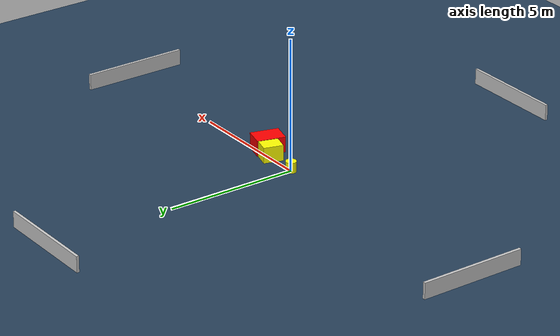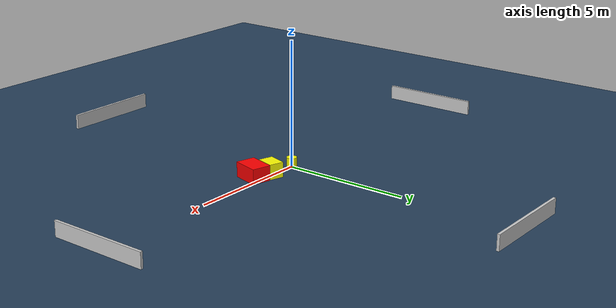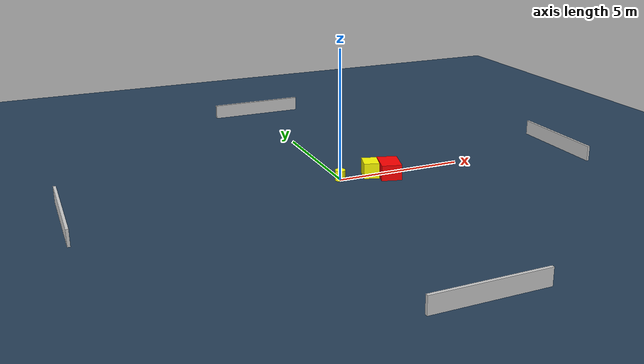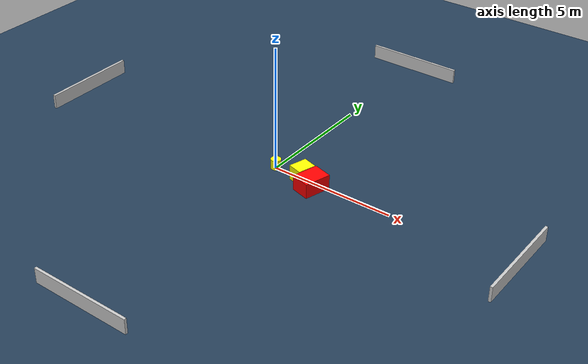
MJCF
<?xml version="1.0" ?>
<mujoco model="generated_environment">
  <option timestep="0.01" integrator="RK4" cone="elliptic"/>
  <default>
    <geom density="1"/>
  </default>
  <asset>
    <texture builtin="gradient" height="3072" name="skybox" rgb1="0.3 0.5 0.7" rgb2="0 0 0" type="skybox" width="512"/>
    <texture builtin="checker" height="300" name="groundplane" rgb1="0.2 0.3 0.4" rgb2="0.1 0.2 0.3" type="2d" width="300"/>
    <material name="groundplane" reflectance="0.2" texrepeat="5 5" texture="groundplane"/>
  </asset>
  <worldbody>
    <light dir="0 0 -1" directional="true" pos="0 0 1.5"/>
    <geom condim="3" friction="0.5 0.005 0.001" material="groundplane" name="floor" pos="0 0 0" size="0 0 0.05" type="plane"/>
    <body name="walls">
      <geom name="wall_1" condim="4" pos="-10.0 0.0 0.3" rgba="0.800000011920929 0.800000011920929 0.800000011920929 1.0" size="0.05 2.0 0.3" type="box"/>
      <geom name="wall_2" condim="4" pos="10.0 0.0 0.3" rgba="0.800000011920929 0.800000011920929 0.800000011920929 1.0" size="0.05 2.0 0.3" type="box"/>
      <geom name="wall_3" condim="4" pos="0.0 -10.0 0.3" rgba="0.800000011920929 0.800000011920929 0.800000011920929 1.0" size="2.0 0.05 0.3" type="box"/>
      <geom name="wall_4" condim="4" pos="0.0 10.0 0.3" rgba="0.800000011920929 0.800000011920929 0.800000011920929 1.0" size="2.0 0.05 0.3" type="box"/>
    </body>
    <body name="robot">
      <joint name="joint_x" type="slide" pos="0 0 0" axis="1 0 0"/>
      <joint name="joint_y" type="slide" pos="0 0 0" axis="0 1 0"/>
      <geom name="robot" type="cylinder" pos="0.0 0.0 0.2" size="0.2 0.2 0.0" mass="5.0" friction="1.0 0.005 0.0001" condim="4" rgba="1.0 1.0 0.0 1.0"/>
    </body>
    <body name="obstacle_1_movable">
      <geom name="obstacle_1_movable" condim="4" pos="1.2392886967864125 -0.0141190672331258 0.3" euler="0 0 73.56692815710983" friction="0.0 0.005 0.001" rgba="1.0 1.0 0.0 1.0" size="0.3688229694908468 0.2944075026047406 0.3" type="box" mass="0.1"/>
      <joint type="free"/>
    </body>
    <body name="obstacle_2_static">
      <geom name="obstacle_2_static" condim="4" pos="1.8806654925666235 -0.3397196506999648 0.3" euler="0 0 344.53707175161657" friction="0.0 0.005 0.001" rgba="1.0 0.0 0.0 1.0" size="0.3872783501676474 0.5367332288825839 0.3" type="box"/>
    </body>
  </worldbody>
  <actuator>
    <motor name="actuator_x" joint="joint_x" gear="1" ctrlrange="-1 1"/>
    <motor name="actuator_y" joint="joint_y" gear="1" ctrlrange="-1 1"/>
  </actuator>
</mujoco>
